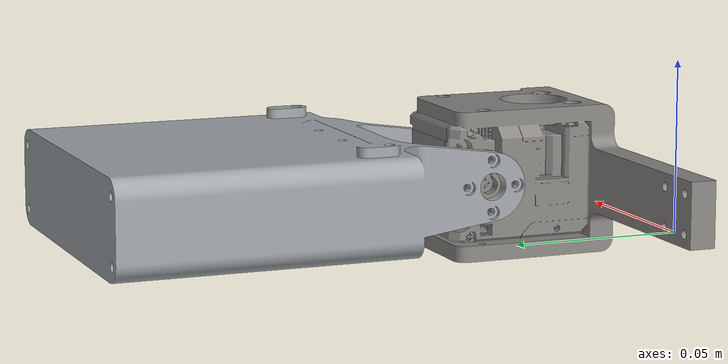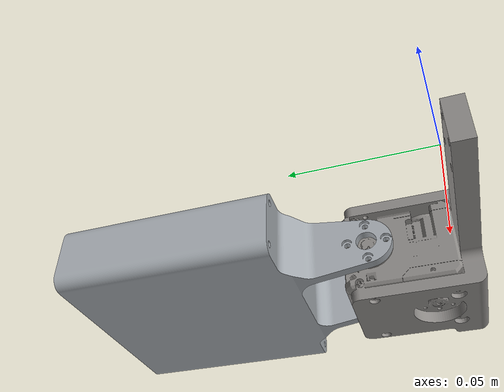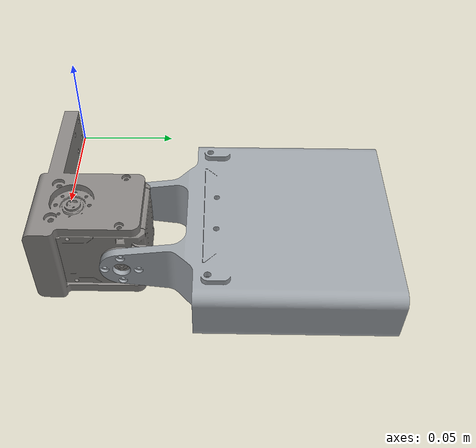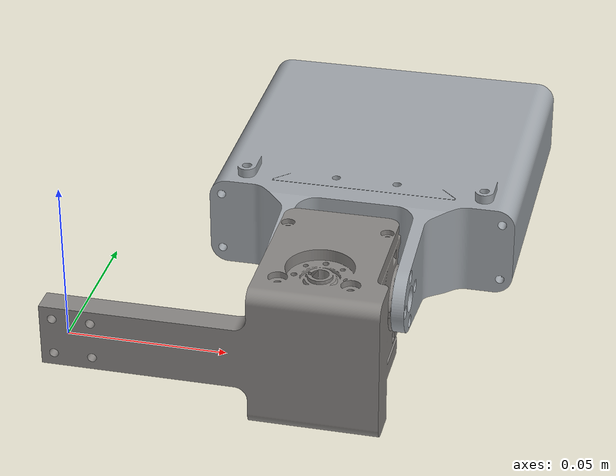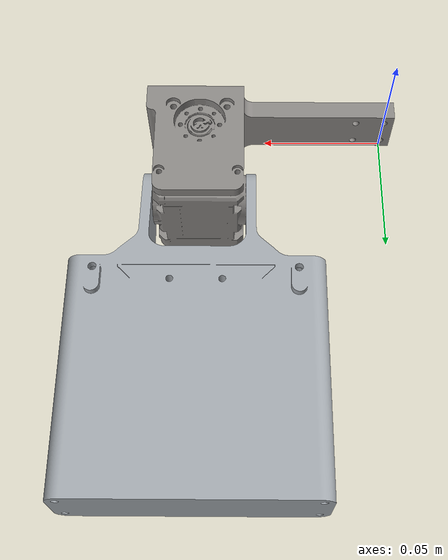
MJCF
<?xml version="1.0" ?>
<mujoco model="sysID_2XC430">
  <compiler angle="radian" autolimits="true"/>
  <asset>
    <mesh name="2xc430_visual" file="../assemblies/sysID_2XC430/meshes/2xc430_visual.stl"/>
    <mesh name="arm_430_visual" file="../assemblies/sysID_2XC430/meshes/arm_430_visual.stl"/>
  </asset>
  <worldbody>
    <geom type="mesh" rgba="0.537784 0.526436 0.515538 1" mesh="2xc430_visual" class="visual"/>
    <body name="arm_430" pos="0.096 0.0326999 0.0062194" quat="0.5 -0.5 0.5 -0.5">
      <inertial pos="-0.0777904 -1.36379e-05 -0.019" quat="0.707306 0 0 0.706907" mass="0.2555" diaginertia="0.000410739 0.000244261 0.000220842"/>
      <joint name="joint_0" pos="0 0 0" axis="0 0 1" range="-1.5708 1.5708" damping="0.089" armature="0.0048" frictionloss="0.033"/>
      <geom type="mesh" rgba="0.630593 0.65299 0.674189 1" mesh="arm_430_visual" class="visual"/>
    </body>
  </worldbody>
  <option>
    <flag eulerdamp="disable"/>
  </option>
  <equality/>
  <contact/>
  <actuator>
    <position name="joint_0" joint="joint_0" kp="16.40625" ctrlrange="-1.5708 1.5708" class="2XC430"/>
  </actuator>
  <default>
    <default class="visual">
      <geom type="mesh" contype="0" conaffinity="0" group="2"/>
    </default>
    <default class="collision">
      <geom group="3"/>
    </default>
    <default class="2XC430">
      <position forcerange="-2 2"/>
    </default>
  </default>
</mujoco>
